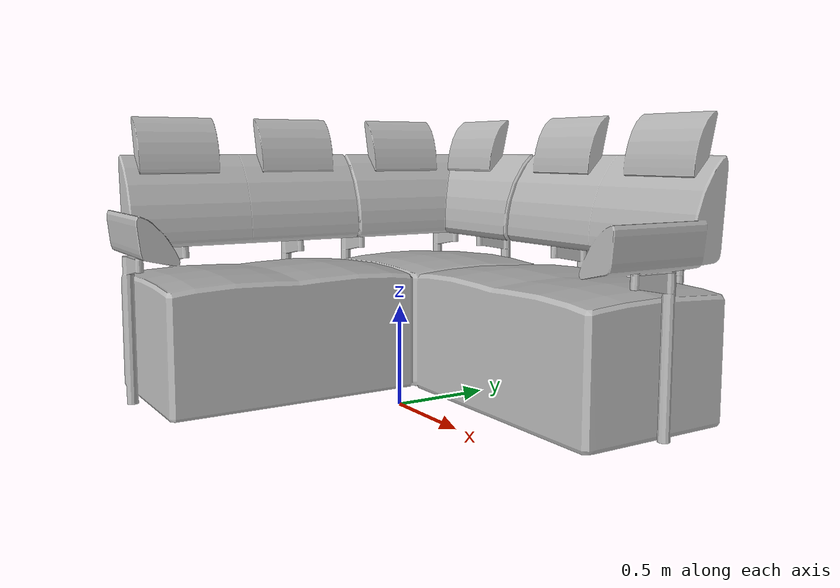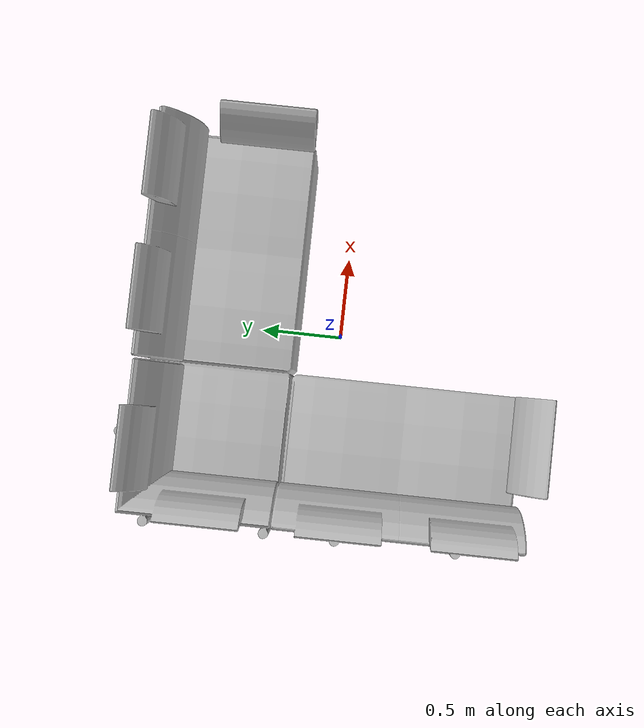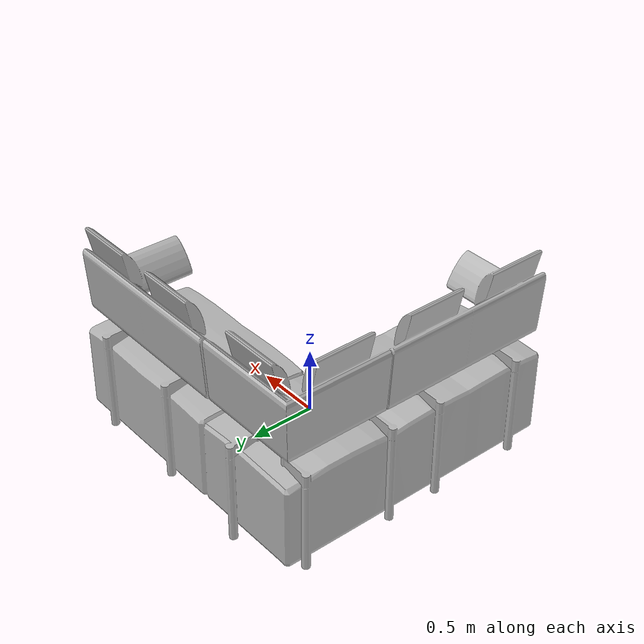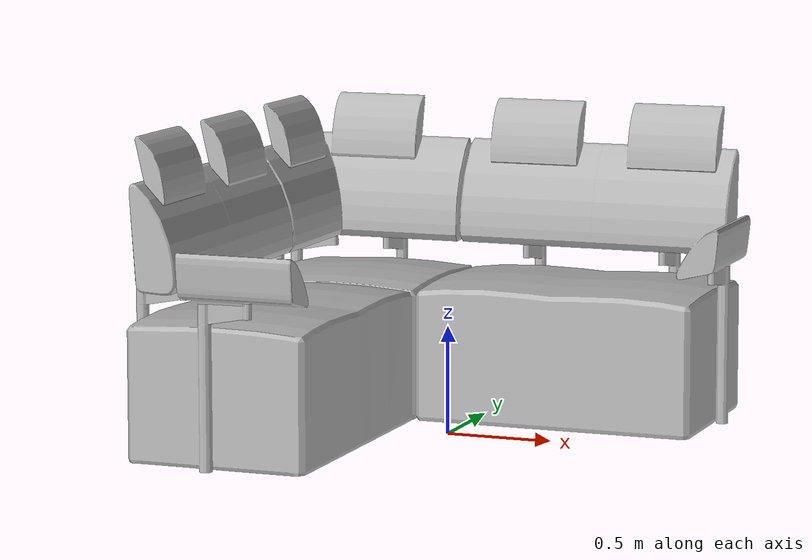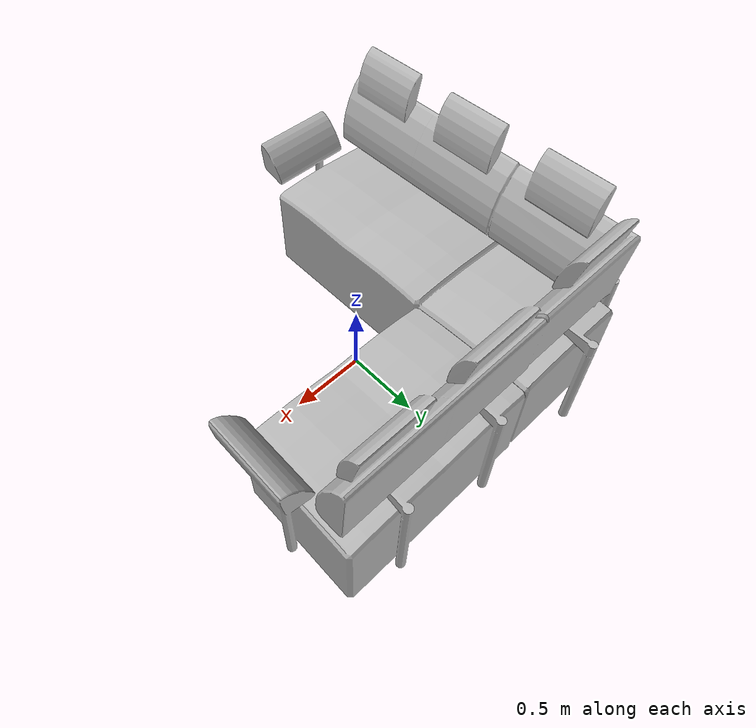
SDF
<?xml version="1.0" ?>
<sdf version="1.6">
  <model name="aws_robomaker_residential_SofaC_01">
    <link name="link">
      <inertial>
        <mass>40</mass>
      </inertial>
      <collision name="collision">
        <geometry>
          <mesh>
            <uri>model://aws_robomaker_residential_SofaC_01/meshes/aws_SofaC_01_collision.DAE</uri>
            <scale>1 1 1.5</scale>
          </mesh>
        </geometry>
      </collision>
      <visual name="visual">
	    <geometry>
          <mesh>
            <uri>model://aws_robomaker_residential_SofaC_01/meshes/aws_SofaC_01_visual.DAE</uri>
            <scale>1 1 1.5</scale>
          </mesh>
        </geometry>
      <meta> <layer> 1 </layer></meta>
</visual>
    </link>
  </model>
</sdf>
